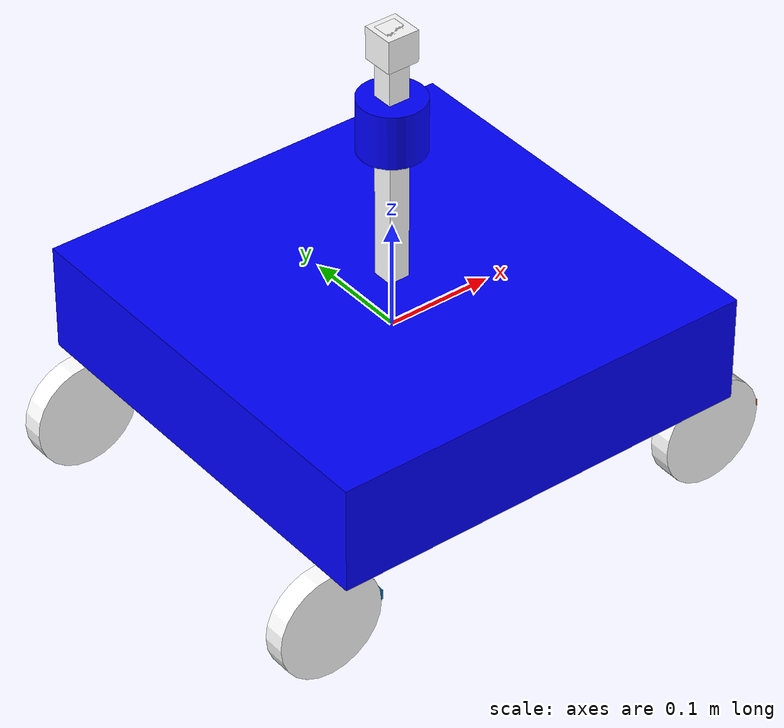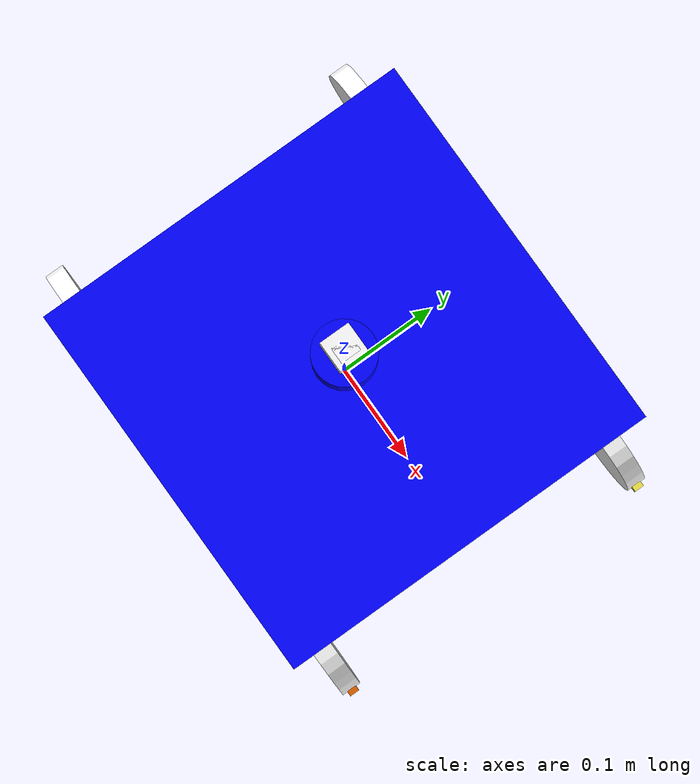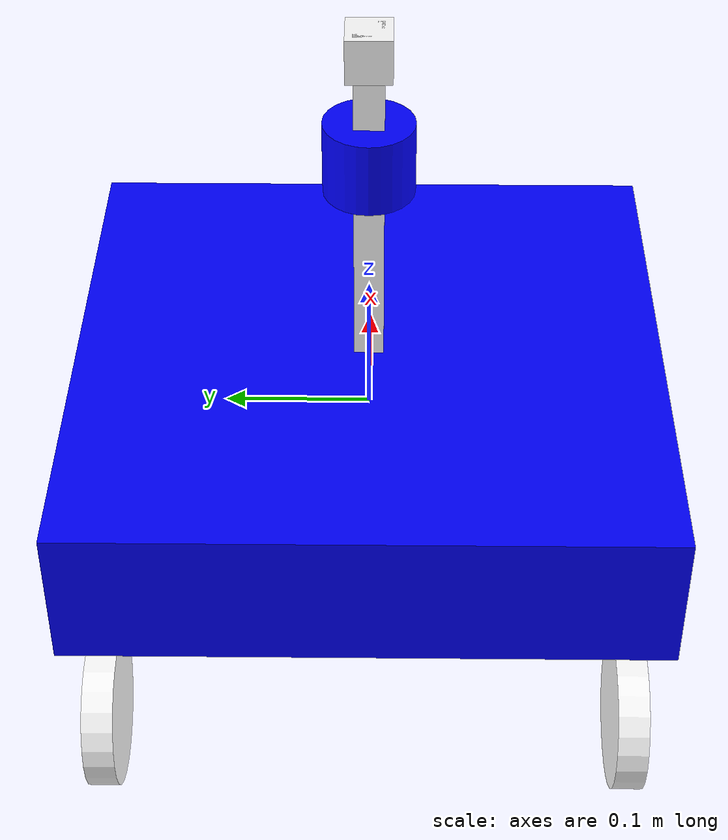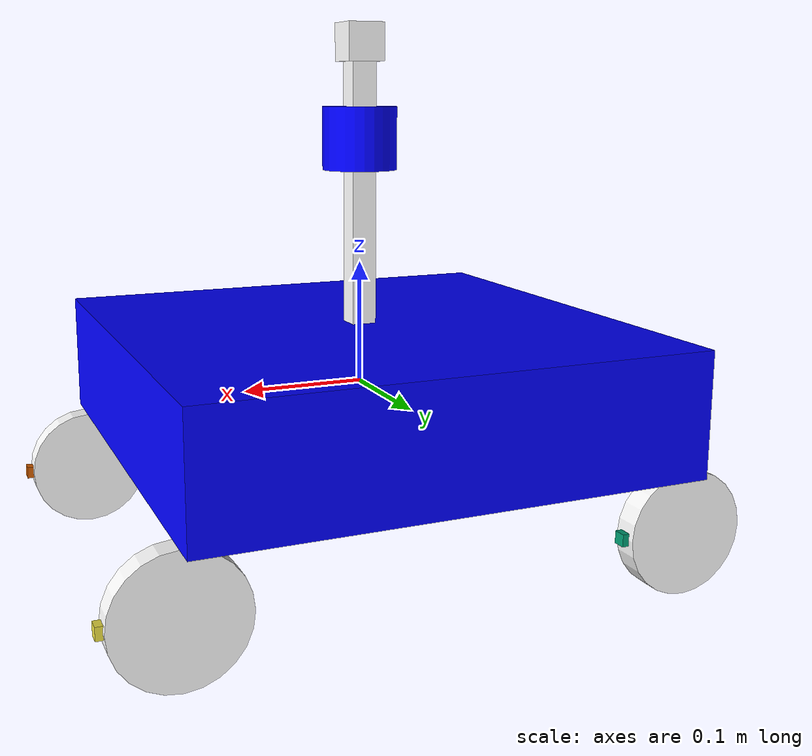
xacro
<?xml version="1.0"?>
<robot name="my_robo1" xmlns:xacro="http://ros.org/wiki/xacro">\
<gazebo>
  <plugin name="gazebo_ros_init" filename="libgazebo_ros_init.so"/>
</gazebo>

<!-- Defining properties -->
<xacro:property name="wheel_radius" value="0.05"/>
<xacro:property name="wheel_width" value="0.02"/>
<xacro:property name="body_length" value="0.4"/>
<xacro:property name="body_width" value="0.4"/>
<xacro:property name="body_height" value="0.1"/>

<!-- Base Link -->
<link name="base_link">
  <visual>
    <geometry>
      <box size="${body_length} ${body_width} ${body_height}"/>
    </geometry>
    <material name="blue">
      <color rgba="0 0 1 1"/>
    </material>
  </visual>
  <collision>
    <geometry>
      <box size="${body_length} ${body_width} ${body_height}"/>
    </geometry>
  </collision>
  <inertial>
    <mass value="5.0"/>
    <inertia ixx="0.1" ixy="0.0" ixz="0.0" iyy="0.1" iyz="0.0" izz="0.1"/>
  </inertial>
</link>

<!-- because the root link cannot have inertia I have added a dummy root link -->
<link name="dummy_root"/>
<joint name="world_to_base" type="fixed">
  <parent link="dummy_root"/>
  <child link="base_link"/>
  <origin xyz="0 0 0" rpy="0 0 0"/>
</joint>

<!--macro to define a wheel -->
<xacro:macro name="wheel" params="name x y">
  <link name="${name}_link">
    <visual>
      <origin rpy="1.5708 0 0"/>
      <geometry>
        <cylinder radius="${wheel_radius}" length="${wheel_width}"/>
      </geometry>
      <material name="white">
        <color rgba="1 1 1 1"/>
      </material>
    </visual>
    <!--adding another visual element to visulaize rotation in rviz -->
    <visual>
      <origin xyz="${wheel_radius} 0 0" rpy="1.5708 0 0"/>
      <geometry>
        <box size="0.01 0.01 0.01"/>
      </geometry>
    </visual>
    <collision>
      <origin rpy="1.5708 0 0"/>
      <geometry>
        <cylinder radius="${wheel_radius}" length="${wheel_width}"/>
      </geometry>
    </collision>
    <inertial>
      <mass value="0.1"/>
      <inertia ixx="0.0001" ixy="0.0" ixz="0.0" iyy="0.0001" iyz="0.0" izz="0.0001"/>
    </inertial>
  </link>
  <joint name="${name}_joint" type="continuous">
    <parent link="base_link"/>
    <child link="${name}_link"/>
    <origin xyz="${x} ${y} -0.1" rpy="0 0 0"/>
    <axis xyz="0 1 0"/>
  </joint>
</xacro:macro>

<!-- using macro to create 4 wheels -->
<xacro:wheel name="front_left_wheel" x="-0.2" y="0.17"/>
<xacro:wheel name="front_right_wheel" x="0.2" y="0.17"/>
<xacro:wheel name="back_left_wheel" x="-0.2" y="-0.17"/>
<xacro:wheel name="back_right_wheel" x="0.2" y="-0.17"/>

<!-- LIDAR LINK -->
<link name="lidar_link">
  <visual>
    <origin xyz="0 0 0.10"/>
    <geometry>
      <cylinder radius="0.03" length="0.05"/>
    </geometry>
    <material name="blue">
      <color rgba="0 0 1 1"/>
    </material>
  </visual>
  <collision>
    <origin xyz="0 0 0.10"/>
    <geometry>
      <cylinder radius="0.03" length="0.05"/>
    </geometry>
  </collision>
  <inertial>
    <mass value="0.1"/>
    <inertia ixx="0.0001" ixy="0" ixz="0" iyy="0.0001" iyz="0" izz="0.0001"/>
  </inertial>
</link>

<!-- LIDAR JOINT -->
<joint name="lidar_joint" type="fixed">
  <parent link="base_link"/>
  <child link="lidar_link"/>
  <origin xyz="0 0 0.10" rpy="0 0 0"/>
</joint>

<!-- CAMERA LINK -->
<link name="camera_link">
  <visual>
    <origin xyz="0 0 0.025"/>
    <geometry>
      <box size="0.03 0.03 0.03"/>
    </geometry>
    <material name="white">
      <color rgba="1 1 1 1"/>
    </material>
  </visual>
  <collision>
    <origin xyz="0 0 0.25"/>
    <geometry>
      <box size="0.05 0.05 0.05"/>
    </geometry>
  </collision>
  <inertial>
    <mass value="0.1"/>
    <inertia ixx="0.0001" ixy="0" ixz="0" iyy="0.0001" iyz="0" izz="0.0001"/>
  </inertial>
</link>

<!-- CAMERA JOINT -->
<joint name="camera_joint" type="fixed">
  <parent link="base_link"/>
  <child link="camera_link"/>
  <origin xyz="0 0 0.25" rpy="0 0 0"/> <!-- x forward, z height -->
</joint>

<!-- CAMERA AND LIDAR STAND -->
<link name="lidar_stand">
  <visual>
    <origin xyz="0 0 0.10" rpy="0 0 0"/>
    <geometry>
      <box size="0.02 0.02 0.28"/>
    </geometry>
    <material name="white">
      <color rgba="1 1 1 1"/>
    </material>
  </visual>
</link>

<joint name="stand_joint" type="fixed">
  <parent link="base_link"/>
  <child link="lidar_stand"/>
  <origin xyz="0 0 0.05" rpy="0 0 0"/>
</joint>

<!-- GAZEBO PLUGINS -->
<!--GAZEBO DIFFERENTIAL DRIVE PLUGIN -->
<gazebo>
  <plugin name="wheel_drive_controller" filename="libgazebo_ros_diff_drive.so">

    <!-- Wheel Configuration -->
    <left_joint>back_left_wheel_joint</left_joint>
    <right_joint>back_right_wheel_joint</right_joint>

    <!-- Physical Properties -->
    <wheel_separation>0.30</wheel_separation> <!-- Approx distance between left and right wheels -->
    <wheel_diameter>0.1</wheel_diameter>

    <!-- Limits -->
    <max_wheel_torque>20</max_wheel_torque>
    <max_wheel_acceleration>1.0</max_wheel_acceleration>

    <!-- Frames -->
    <odometry_frame>odom</odometry_frame>
    <robot_base_frame>base_link</robot_base_frame>

    <!-- Publishing -->
    <publish_odom>true</publish_odom>
    <publish_odom_tf>true</publish_odom_tf>
    <publish_wheel_tf>false</publish_wheel_tf>

  </plugin>
</gazebo>

<!--GAZEBO LIDAR PLUGIN -->
<gazebo reference="lidar_link">
  <sensor type="ray" name="my_lidar_sensor">
    <always_on>true</always_on>
    <pose>0 0 0 0 0 0</pose> <!-- maybe remove -->
    <update_rate>10.0</update_rate>
    <visualize>true</visualize>
    <ray>
      <scan>
        <horizontal>
          <samples>720</samples>
          <resolution>1</resolution>
          <min_angle>-1.5708</min_angle>
          <max_angle>1.5708</max_angle>
        </horizontal>
      </scan>
      <range>
        <min>0.12</min>
        <max>10.0</max>
        <resolution>0.01</resolution>
      </range>
      <noise>
        <type>gaussian</type>
        <mean>0.0</mean>
        <stddev>0.01</stddev>
      </noise>
    </ray>
    <plugin name="my_lidar_plugin" filename="libgazebo_ros_ray_sensor.so">
    <output_type>sensor_msgs/LaserScan</output_type>
      <ros>
        <namespace>/</namespace>
        <remapping>~/out:=/scan</remapping>
      </ros>
      <frame_name>lidar_link</frame_name>
    </plugin>
  </sensor>
</gazebo>

<!-- GAZEBO CAMERA PLUGIN -->
<gazebo reference="camera_link">
  <sensor name="camera_sensor" type="camera">
    <pose>0 0 0 0 0 0</pose>
    <visualize>true</visualize>
    <update_rate>30</update_rate>
    <camera>
      <horizontal_fov>1.3962634</horizontal_fov> <!-- ~80 degrees -->
      <image>
        <width>640</width>
        <height>480</height>
        <format>R8G8B8</format>
      </image>
      <clip>
        <near>0.1</near>
        <far>10.0</far>
      </clip>
    </camera>
    <plugin name="gazebo_ros_camera" filename="libgazebo_ros_camera.so">
      <camera_name>camera</camera_name>
      <frame_name>camera_link</frame_name>
      <ros>
        <remapping>~/image_raw:=/camera/image_raw</remapping>
      </ros>
    </plugin>
  </sensor>
</gazebo>
 <!--adding colours in gazebo -->
<gazebo reference="base_link">
  <material>Gazebo/Blue</material>
</gazebo>
<gazebo reference="front_right_wheel">
  <material>Gazebo/White</material>
</gazebo>
<gazebo reference="front_left_wheel">
  <material>Gazebo/White</material>
</gazebo>
<gazebo reference="back_right_wheel">
  <material>Gazebo/White</material>
</gazebo>
<gazebo reference="back_left_wheel">
  <material>Gazebo/White</material>
</gazebo>
<gazebo reference="lidar_link">
  <material>Gazebo/Black</material>
</gazebo>
<gazebo reference="camera_link">
  <material>Gazebo/Black</material>
</gazebo>
<gazebo reference="lidar_stand">
  <material>Gazebo/White</material>
</gazebo>
</robot>
